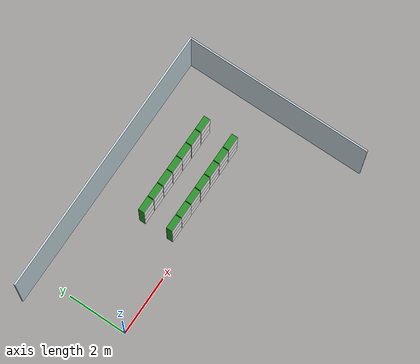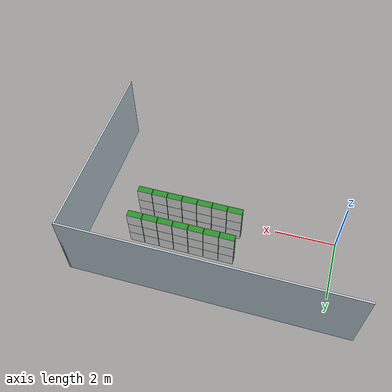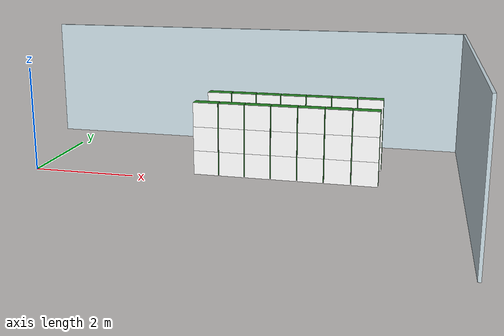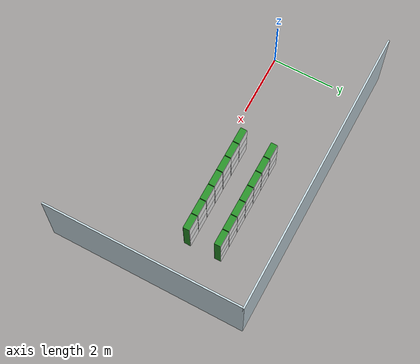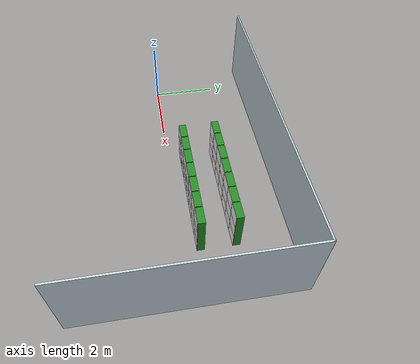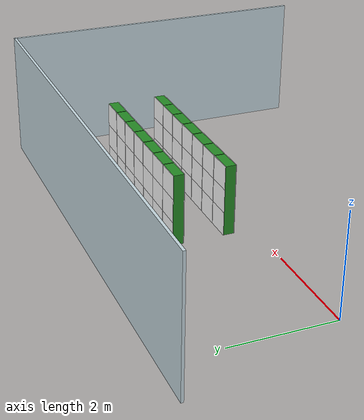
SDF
<sdf version="1.6">
 <world name="greenhouse_world">
  <model name="tomato_r2_p5">
   <static>true</static>
   <pose>3.340 0.500 0 0 0 0</pose>
   <link name="link">
    <collision name="foliage_col">
     <pose>0 0 0.700 0 0 0</pose>
     <geometry><box><size>0.480 0.200 1.400</size></box></geometry>
    </collision>
    <visual name="foliage_core">
     <pose>0 0 0.700 0 0 0</pose>
     <geometry><box><size>0.480 0.200 1.400</size></box></geometry>
     <material><ambient>0.1 0.4 0.1 1</ambient><diffuse>0.15 0.55 0.15 1</diffuse></material>
    </visual>
    <visual name="foliage_panel_py_0">
     <pose>0 0.105 0.233 0 0 0</pose>
     <geometry><box><size>0.480 0.010 0.467</size></box></geometry>
     <material>
      <diffuse>1 1 1 1</diffuse>
      <specular>0 0 0 1</specular>
      <pbr>
       <metal>
        <albedo_map>../media/materials/textures/img02.jpg</albedo_map>
        <metalness>0.0</metalness>
        <roughness>1.0</roughness>
       </metal>
      </pbr>
     </material>
    </visual>
    <visual name="foliage_panel_py_1">
     <pose>0 0.105 0.700 0 0 0</pose>
     <geometry><box><size>0.480 0.010 0.467</size></box></geometry>
     <material>
      <diffuse>1 1 1 1</diffuse>
      <specular>0 0 0 1</specular>
      <pbr>
       <metal>
        <albedo_map>../media/materials/textures/img20.jpg</albedo_map>
        <metalness>0.0</metalness>
        <roughness>1.0</roughness>
       </metal>
      </pbr>
     </material>
    </visual>
    <visual name="foliage_panel_py_2">
     <pose>0 0.105 1.167 0 0 0</pose>
     <geometry><box><size>0.480 0.010 0.467</size></box></geometry>
     <material>
      <diffuse>1 1 1 1</diffuse>
      <specular>0 0 0 1</specular>
      <pbr>
       <metal>
        <albedo_map>../media/materials/textures/img01.jpg</albedo_map>
        <metalness>0.0</metalness>
        <roughness>1.0</roughness>
       </metal>
      </pbr>
     </material>
    </visual>
    <visual name="foliage_panel_ny_0">
     <pose>0 -0.105 0.233 0 3.14159 0</pose>
     <geometry><box><size>0.480 0.010 0.467</size></box></geometry>
     <material>
      <diffuse>1 1 1 1</diffuse>
      <specular>0 0 0 1</specular>
      <pbr>
       <metal>
        <albedo_map>../media/materials/textures/img07.jpg</albedo_map>
        <metalness>0.0</metalness>
        <roughness>1.0</roughness>
       </metal>
      </pbr>
     </material>
    </visual>
    <visual name="foliage_panel_ny_1">
     <pose>0 -0.105 0.700 0 3.14159 0</pose>
     <geometry><box><size>0.480 0.010 0.467</size></box></geometry>
     <material>
      <diffuse>1 1 1 1</diffuse>
      <specular>0 0 0 1</specular>
      <pbr>
       <metal>
        <albedo_map>../media/materials/textures/img06.jpg</albedo_map>
        <metalness>0.0</metalness>
        <roughness>1.0</roughness>
       </metal>
      </pbr>
     </material>
    </visual>
    <visual name="foliage_panel_ny_2">
     <pose>0 -0.105 1.167 0 3.14159 0</pose>
     <geometry><box><size>0.480 0.010 0.467</size></box></geometry>
     <material>
      <diffuse>1 1 1 1</diffuse>
      <specular>0 0 0 1</specular>
      <pbr>
       <metal>
        <albedo_map>../media/materials/textures/img23.jpg</albedo_map>
        <metalness>0.0</metalness>
        <roughness>1.0</roughness>
       </metal>
      </pbr>
     </material>
    </visual>
   </link>
  </model>
  <model name="tomato_r2_p6">
   <static>true</static>
   <pose>3.840 0.500 0 0 0 0</pose>
   <link name="link">
    <collision name="foliage_col">
     <pose>0 0 0.700 0 0 0</pose>
     <geometry><box><size>0.480 0.200 1.400</size></box></geometry>
    </collision>
    <visual name="foliage_core">
     <pose>0 0 0.700 0 0 0</pose>
     <geometry><box><size>0.480 0.200 1.400</size></box></geometry>
     <material><ambient>0.1 0.4 0.1 1</ambient><diffuse>0.15 0.55 0.15 1</diffuse></material>
    </visual>
    <visual name="foliage_panel_py_0">
     <pose>0 0.105 0.233 0 0 0</pose>
     <geometry><box><size>0.480 0.010 0.467</size></box></geometry>
     <material>
      <diffuse>1 1 1 1</diffuse>
      <specular>0 0 0 1</specular>
      <pbr>
       <metal>
        <albedo_map>../media/materials/textures/img04.jpg</albedo_map>
        <metalness>0.0</metalness>
        <roughness>1.0</roughness>
       </metal>
      </pbr>
     </material>
    </visual>
    <visual name="foliage_panel_py_1">
     <pose>0 0.105 0.700 0 0 0</pose>
     <geometry><box><size>0.480 0.010 0.467</size></box></geometry>
     <material>
      <diffuse>1 1 1 1</diffuse>
      <specular>0 0 0 1</specular>
      <pbr>
       <metal>
        <albedo_map>../media/materials/textures/img16.jpg</albedo_map>
        <metalness>0.0</metalness>
        <roughness>1.0</roughness>
       </metal>
      </pbr>
     </material>
    </visual>
    <visual name="foliage_panel_py_2">
     <pose>0 0.105 1.167 0 0 0</pose>
     <geometry><box><size>0.480 0.010 0.467</size></box></geometry>
     <material>
      <diffuse>1 1 1 1</diffuse>
      <specular>0 0 0 1</specular>
      <pbr>
       <metal>
        <albedo_map>../media/materials/textures/img07.jpg</albedo_map>
        <metalness>0.0</metalness>
        <roughness>1.0</roughness>
       </metal>
      </pbr>
     </material>
    </visual>
    <visual name="foliage_panel_ny_0">
     <pose>0 -0.105 0.233 0 3.14159 0</pose>
     <geometry><box><size>0.480 0.010 0.467</size></box></geometry>
     <material>
      <diffuse>1 1 1 1</diffuse>
      <specular>0 0 0 1</specular>
      <pbr>
       <metal>
        <albedo_map>../media/materials/textures/img24.jpg</albedo_map>
        <metalness>0.0</metalness>
        <roughness>1.0</roughness>
       </metal>
      </pbr>
     </material>
    </visual>
    <visual name="foliage_panel_ny_1">
     <pose>0 -0.105 0.700 0 3.14159 0</pose>
     <geometry><box><size>0.480 0.010 0.467</size></box></geometry>
     <material>
      <diffuse>1 1 1 1</diffuse>
      <specular>0 0 0 1</specular>
      <pbr>
       <metal>
        <albedo_map>../media/materials/textures/img02.jpg</albedo_map>
        <metalness>0.0</metalness>
        <roughness>1.0</roughness>
       </metal>
      </pbr>
     </material>
    </visual>
    <visual name="foliage_panel_ny_2">
     <pose>0 -0.105 1.167 0 3.14159 0</pose>
     <geometry><box><size>0.480 0.010 0.467</size></box></geometry>
     <material>
      <diffuse>1 1 1 1</diffuse>
      <specular>0 0 0 1</specular>
      <pbr>
       <metal>
        <albedo_map>../media/materials/textures/img22.jpg</albedo_map>
        <metalness>0.0</metalness>
        <roughness>1.0</roughness>
       </metal>
      </pbr>
     </material>
    </visual>
   </link>
  </model>
  <model name="tomato_r2_p7">
   <static>true</static>
   <pose>4.340 0.500 0 0 0 0</pose>
   <link name="link">
    <collision name="foliage_col">
     <pose>0 0 0.700 0 0 0</pose>
     <geometry><box><size>0.480 0.200 1.400</size></box></geometry>
    </collision>
    <visual name="foliage_core">
     <pose>0 0 0.700 0 0 0</pose>
     <geometry><box><size>0.480 0.200 1.400</size></box></geometry>
     <material><ambient>0.1 0.4 0.1 1</ambient><diffuse>0.15 0.55 0.15 1</diffuse></material>
    </visual>
    <visual name="foliage_panel_py_0">
     <pose>0 0.105 0.233 0 0 0</pose>
     <geometry><box><size>0.480 0.010 0.467</size></box></geometry>
     <material>
      <diffuse>1 1 1 1</diffuse>
      <specular>0 0 0 1</specular>
      <pbr>
       <metal>
        <albedo_map>../media/materials/textures/img01.jpg</albedo_map>
        <metalness>0.0</metalness>
        <roughness>1.0</roughness>
       </metal>
      </pbr>
     </material>
    </visual>
    <visual name="foliage_panel_py_1">
     <pose>0 0.105 0.700 0 0 0</pose>
     <geometry><box><size>0.480 0.010 0.467</size></box></geometry>
     <material>
      <diffuse>1 1 1 1</diffuse>
      <specular>0 0 0 1</specular>
      <pbr>
       <metal>
        <albedo_map>../media/materials/textures/img18.jpg</albedo_map>
        <metalness>0.0</metalness>
        <roughness>1.0</roughness>
       </metal>
      </pbr>
     </material>
    </visual>
    <visual name="foliage_panel_py_2">
     <pose>0 0.105 1.167 0 0 0</pose>
     <geometry><box><size>0.480 0.010 0.467</size></box></geometry>
     <material>
      <diffuse>1 1 1 1</diffuse>
      <specular>0 0 0 1</specular>
      <pbr>
       <metal>
        <albedo_map>../media/materials/textures/img14.jpg</albedo_map>
        <metalness>0.0</metalness>
        <roughness>1.0</roughness>
       </metal>
      </pbr>
     </material>
    </visual>
    <visual name="foliage_panel_ny_0">
     <pose>0 -0.105 0.233 0 3.14159 0</pose>
     <geometry><box><size>0.480 0.010 0.467</size></box></geometry>
     <material>
      <diffuse>1 1 1 1</diffuse>
      <specular>0 0 0 1</specular>
      <pbr>
       <metal>
        <albedo_map>../media/materials/textures/img20.jpg</albedo_map>
        <metalness>0.0</metalness>
        <roughness>1.0</roughness>
       </metal>
      </pbr>
     </material>
    </visual>
    <visual name="foliage_panel_ny_1">
     <pose>0 -0.105 0.700 0 3.14159 0</pose>
     <geometry><box><size>0.480 0.010 0.467</size></box></geometry>
     <material>
      <diffuse>1 1 1 1</diffuse>
      <specular>0 0 0 1</specular>
      <pbr>
       <metal>
        <albedo_map>../media/materials/textures/img04.jpg</albedo_map>
        <metalness>0.0</metalness>
        <roughness>1.0</roughness>
       </metal>
      </pbr>
     </material>
    </visual>
    <visual name="foliage_panel_ny_2">
     <pose>0 -0.105 1.167 0 3.14159 0</pose>
     <geometry><box><size>0.480 0.010 0.467</size></box></geometry>
     <material>
      <diffuse>1 1 1 1</diffuse>
      <specular>0 0 0 1</specular>
      <pbr>
       <metal>
        <albedo_map>../media/materials/textures/img09.jpg</albedo_map>
        <metalness>0.0</metalness>
        <roughness>1.0</roughness>
       </metal>
      </pbr>
     </material>
    </visual>
   </link>
  </model>
  <model name="tomato_r2_p8">
   <static>true</static>
   <pose>4.840 0.500 0 0 0 0</pose>
   <link name="link">
    <collision name="foliage_col">
     <pose>0 0 0.700 0 0 0</pose>
     <geometry><box><size>0.480 0.200 1.400</size></box></geometry>
    </collision>
    <visual name="foliage_core">
     <pose>0 0 0.700 0 0 0</pose>
     <geometry><box><size>0.480 0.200 1.400</size></box></geometry>
     <material><ambient>0.1 0.4 0.1 1</ambient><diffuse>0.15 0.55 0.15 1</diffuse></material>
    </visual>
    <visual name="foliage_panel_py_0">
     <pose>0 0.105 0.233 0 0 0</pose>
     <geometry><box><size>0.480 0.010 0.467</size></box></geometry>
     <material>
      <diffuse>1 1 1 1</diffuse>
      <specular>0 0 0 1</specular>
      <pbr>
       <metal>
        <albedo_map>../media/materials/textures/img03.jpg</albedo_map>
        <metalness>0.0</metalness>
        <roughness>1.0</roughness>
       </metal>
      </pbr>
     </material>
    </visual>
    <visual name="foliage_panel_py_1">
     <pose>0 0.105 0.700 0 0 0</pose>
     <geometry><box><size>0.480 0.010 0.467</size></box></geometry>
     <material>
      <diffuse>1 1 1 1</diffuse>
      <specular>0 0 0 1</specular>
      <pbr>
       <metal>
        <albedo_map>../media/materials/textures/img08.jpg</albedo_map>
        <metalness>0.0</metalness>
        <roughness>1.0</roughness>
       </metal>
      </pbr>
     </material>
    </visual>
    <visual name="foliage_panel_py_2">
     <pose>0 0.105 1.167 0 0 0</pose>
     <geometry><box><size>0.480 0.010 0.467</size></box></geometry>
     <material>
      <diffuse>1 1 1 1</diffuse>
      <specular>0 0 0 1</specular>
      <pbr>
       <metal>
        <albedo_map>../media/materials/textures/img03.jpg</albedo_map>
        <metalness>0.0</metalness>
        <roughness>1.0</roughness>
       </metal>
      </pbr>
     </material>
    </visual>
    <visual name="foliage_panel_ny_0">
     <pose>0 -0.105 0.233 0 3.14159 0</pose>
     <geometry><box><size>0.480 0.010 0.467</size></box></geometry>
     <material>
      <diffuse>1 1 1 1</diffuse>
      <specular>0 0 0 1</specular>
      <pbr>
       <metal>
        <albedo_map>../media/materials/textures/img21.jpg</albedo_map>
        <metalness>0.0</metalness>
        <roughness>1.0</roughness>
       </metal>
      </pbr>
     </material>
    </visual>
    <visual name="foliage_panel_ny_1">
     <pose>0 -0.105 0.700 0 3.14159 0</pose>
     <geometry><box><size>0.480 0.010 0.467</size></box></geometry>
     <material>
      <diffuse>1 1 1 1</diffuse>
      <specular>0 0 0 1</specular>
      <pbr>
       <metal>
        <albedo_map>../media/materials/textures/img10.jpg</albedo_map>
        <metalness>0.0</metalness>
        <roughness>1.0</roughness>
       </metal>
      </pbr>
     </material>
    </visual>
    <visual name="foliage_panel_ny_2">
     <pose>0 -0.105 1.167 0 3.14159 0</pose>
     <geometry><box><size>0.480 0.010 0.467</size></box></geometry>
     <material>
      <diffuse>1 1 1 1</diffuse>
      <specular>0 0 0 1</specular>
      <pbr>
       <metal>
        <albedo_map>../media/materials/textures/img12.jpg</albedo_map>
        <metalness>0.0</metalness>
        <roughness>1.0</roughness>
       </metal>
      </pbr>
     </material>
    </visual>
   </link>
  </model>
  <model name="tomato_r2_p9">
   <static>true</static>
   <pose>5.340 0.500 0 0 0 0</pose>
   <link name="link">
    <collision name="foliage_col">
     <pose>0 0 0.700 0 0 0</pose>
     <geometry><box><size>0.480 0.200 1.400</size></box></geometry>
    </collision>
    <visual name="foliage_core">
     <pose>0 0 0.700 0 0 0</pose>
     <geometry><box><size>0.480 0.200 1.400</size></box></geometry>
     <material><ambient>0.1 0.4 0.1 1</ambient><diffuse>0.15 0.55 0.15 1</diffuse></material>
    </visual>
    <visual name="foliage_panel_py_0">
     <pose>0 0.105 0.233 0 0 0</pose>
     <geometry><box><size>0.480 0.010 0.467</size></box></geometry>
     <material>
      <diffuse>1 1 1 1</diffuse>
      <specular>0 0 0 1</specular>
      <pbr>
       <metal>
        <albedo_map>../media/materials/textures/img14.jpg</albedo_map>
        <metalness>0.0</metalness>
        <roughness>1.0</roughness>
       </metal>
      </pbr>
     </material>
    </visual>
    <visual name="foliage_panel_py_1">
     <pose>0 0.105 0.700 0 0 0</pose>
     <geometry><box><size>0.480 0.010 0.467</size></box></geometry>
     <material>
      <diffuse>1 1 1 1</diffuse>
      <specular>0 0 0 1</specular>
      <pbr>
       <metal>
        <albedo_map>../media/materials/textures/img06.jpg</albedo_map>
        <metalness>0.0</metalness>
        <roughness>1.0</roughness>
       </metal>
      </pbr>
     </material>
    </visual>
    <visual name="foliage_panel_py_2">
     <pose>0 0.105 1.167 0 0 0</pose>
     <geometry><box><size>0.480 0.010 0.467</size></box></geometry>
     <material>
      <diffuse>1 1 1 1</diffuse>
      <specular>0 0 0 1</specular>
      <pbr>
       <metal>
        <albedo_map>../media/materials/textures/img02.jpg</albedo_map>
        <metalness>0.0</metalness>
        <roughness>1.0</roughness>
       </metal>
      </pbr>
     </material>
    </visual>
    <visual name="foliage_panel_ny_0">
     <pose>0 -0.105 0.233 0 3.14159 0</pose>
     <geometry><box><size>0.480 0.010 0.467</size></box></geometry>
     <material>
      <diffuse>1 1 1 1</diffuse>
      <specular>0 0 0 1</specular>
      <pbr>
       <metal>
        <albedo_map>../media/materials/textures/img17.jpg</albedo_map>
        <metalness>0.0</metalness>
        <roughness>1.0</roughness>
       </metal>
      </pbr>
     </material>
    </visual>
    <visual name="foliage_panel_ny_1">
     <pose>0 -0.105 0.700 0 3.14159 0</pose>
     <geometry><box><size>0.480 0.010 0.467</size></box></geometry>
     <material>
      <diffuse>1 1 1 1</diffuse>
      <specular>0 0 0 1</specular>
      <pbr>
       <metal>
        <albedo_map>../media/materials/textures/img15.jpg</albedo_map>
        <metalness>0.0</metalness>
        <roughness>1.0</roughness>
       </metal>
      </pbr>
     </material>
    </visual>
    <visual name="foliage_panel_ny_2">
     <pose>0 -0.105 1.167 0 3.14159 0</pose>
     <geometry><box><size>0.480 0.010 0.467</size></box></geometry>
     <material>
      <diffuse>1 1 1 1</diffuse>
      <specular>0 0 0 1</specular>
      <pbr>
       <metal>
        <albedo_map>../media/materials/textures/img02.jpg</albedo_map>
        <metalness>0.0</metalness>
        <roughness>1.0</roughness>
       </metal>
      </pbr>
     </material>
    </visual>
   </link>
  </model>
  <model name="tomato_r2_p10">
   <static>true</static>
   <pose>5.840 0.500 0 0 0 0</pose>
   <link name="link">
    <collision name="foliage_col">
     <pose>0 0 0.700 0 0 0</pose>
     <geometry><box><size>0.480 0.200 1.400</size></box></geometry>
    </collision>
    <visual name="foliage_core">
     <pose>0 0 0.700 0 0 0</pose>
     <geometry><box><size>0.480 0.200 1.400</size></box></geometry>
     <material><ambient>0.1 0.4 0.1 1</ambient><diffuse>0.15 0.55 0.15 1</diffuse></material>
    </visual>
    <visual name="foliage_panel_py_0">
     <pose>0 0.105 0.233 0 0 0</pose>
     <geometry><box><size>0.480 0.010 0.467</size></box></geometry>
     <material>
      <diffuse>1 1 1 1</diffuse>
      <specular>0 0 0 1</specular>
      <pbr>
       <metal>
        <albedo_map>../media/materials/textures/img20.jpg</albedo_map>
        <metalness>0.0</metalness>
        <roughness>1.0</roughness>
       </metal>
      </pbr>
     </material>
    </visual>
    <visual name="foliage_panel_py_1">
     <pose>0 0.105 0.700 0 0 0</pose>
     <geometry><box><size>0.480 0.010 0.467</size></box></geometry>
     <material>
      <diffuse>1 1 1 1</diffuse>
      <specular>0 0 0 1</specular>
      <pbr>
       <metal>
        <albedo_map>../media/materials/textures/img04.jpg</albedo_map>
        <metalness>0.0</metalness>
        <roughness>1.0</roughness>
       </metal>
      </pbr>
     </material>
    </visual>
    <visual name="foliage_panel_py_2">
     <pose>0 0.105 1.167 0 0 0</pose>
     <geometry><box><size>0.480 0.010 0.467</size></box></geometry>
     <material>
      <diffuse>1 1 1 1</diffuse>
      <specular>0 0 0 1</specular>
      <pbr>
       <metal>
        <albedo_map>../media/materials/textures/img23.jpg</albedo_map>
        <metalness>0.0</metalness>
        <roughness>1.0</roughness>
       </metal>
      </pbr>
     </material>
    </visual>
    <visual name="foliage_panel_ny_0">
     <pose>0 -0.105 0.233 0 3.14159 0</pose>
     <geometry><box><size>0.480 0.010 0.467</size></box></geometry>
     <material>
      <diffuse>1 1 1 1</diffuse>
      <specular>0 0 0 1</specular>
      <pbr>
       <metal>
        <albedo_map>../media/materials/textures/img13.jpg</albedo_map>
        <metalness>0.0</metalness>
        <roughness>1.0</roughness>
       </metal>
      </pbr>
     </material>
    </visual>
    <visual name="foliage_panel_ny_1">
     <pose>0 -0.105 0.700 0 3.14159 0</pose>
     <geometry><box><size>0.480 0.010 0.467</size></box></geometry>
     <material>
      <diffuse>1 1 1 1</diffuse>
      <specular>0 0 0 1</specular>
      <pbr>
       <metal>
        <albedo_map>../media/materials/textures/img07.jpg</albedo_map>
        <metalness>0.0</metalness>
        <roughness>1.0</roughness>
       </metal>
      </pbr>
     </material>
    </visual>
    <visual name="foliage_panel_ny_2">
     <pose>0 -0.105 1.167 0 3.14159 0</pose>
     <geometry><box><size>0.480 0.010 0.467</size></box></geometry>
     <material>
      <diffuse>1 1 1 1</diffuse>
      <specular>0 0 0 1</specular>
      <pbr>
       <metal>
        <albedo_map>../media/materials/textures/img09.jpg</albedo_map>
        <metalness>0.0</metalness>
        <roughness>1.0</roughness>
       </metal>
      </pbr>
     </material>
    </visual>
   </link>
  </model>
  <model name="tomato_r2_p11">
   <static>true</static>
   <pose>6.340 0.500 0 0 0 0</pose>
   <link name="link">
    <collision name="foliage_col">
     <pose>0 0 0.700 0 0 0</pose>
     <geometry><box><size>0.480 0.200 1.400</size></box></geometry>
    </collision>
    <visual name="foliage_core">
     <pose>0 0 0.700 0 0 0</pose>
     <geometry><box><size>0.480 0.200 1.400</size></box></geometry>
     <material><ambient>0.1 0.4 0.1 1</ambient><diffuse>0.15 0.55 0.15 1</diffuse></material>
    </visual>
    <visual name="foliage_panel_py_0">
     <pose>0 0.105 0.233 0 0 0</pose>
     <geometry><box><size>0.480 0.010 0.467</size></box></geometry>
     <material>
      <diffuse>1 1 1 1</diffuse>
      <specular>0 0 0 1</specular>
      <pbr>
       <metal>
        <albedo_map>../media/materials/textures/img12.jpg</albedo_map>
        <metalness>0.0</metalness>
        <roughness>1.0</roughness>
       </metal>
      </pbr>
     </material>
    </visual>
    <visual name="foliage_panel_py_1">
     <pose>0 0.105 0.700 0 0 0</pose>
     <geometry><box><size>0.480 0.010 0.467</size></box></geometry>
     <material>
      <diffuse>1 1 1 1</diffuse>
      <specular>0 0 0 1</specular>
      <pbr>
       <metal>
        <albedo_map>../media/materials/textures/img24.jpg</albedo_map>
        <metalness>0.0</metalness>
        <roughness>1.0</roughness>
       </metal>
      </pbr>
     </material>
    </visual>
    <visual name="foliage_panel_py_2">
     <pose>0 0.105 1.167 0 0 0</pose>
     <geometry><box><size>0.480 0.010 0.467</size></box></geometry>
     <material>
      <diffuse>1 1 1 1</diffuse>
      <specular>0 0 0 1</specular>
      <pbr>
       <metal>
        <albedo_map>../media/materials/textures/img16.jpg</albedo_map>
        <metalness>0.0</metalness>
        <roughness>1.0</roughness>
       </metal>
      </pbr>
     </material>
    </visual>
    <visual name="foliage_panel_ny_0">
     <pose>0 -0.105 0.233 0 3.14159 0</pose>
     <geometry><box><size>0.480 0.010 0.467</size></box></geometry>
     <material>
      <diffuse>1 1 1 1</diffuse>
      <specular>0 0 0 1</specular>
      <pbr>
       <metal>
        <albedo_map>../media/materials/textures/img19.jpg</albedo_map>
        <metalness>0.0</metalness>
        <roughness>1.0</roughness>
       </metal>
      </pbr>
     </material>
    </visual>
    <visual name="foliage_panel_ny_1">
     <pose>0 -0.105 0.700 0 3.14159 0</pose>
     <geometry><box><size>0.480 0.010 0.467</size></box></geometry>
     <material>
      <diffuse>1 1 1 1</diffuse>
      <specular>0 0 0 1</specular>
      <pbr>
       <metal>
        <albedo_map>../media/materials/textures/img06.jpg</albedo_map>
        <metalness>0.0</metalness>
        <roughness>1.0</roughness>
       </metal>
      </pbr>
     </material>
    </visual>
    <visual name="foliage_panel_ny_2">
     <pose>0 -0.105 1.167 0 3.14159 0</pose>
     <geometry><box><size>0.480 0.010 0.467</size></box></geometry>
     <material>
      <diffuse>1 1 1 1</diffuse>
      <specular>0 0 0 1</specular>
      <pbr>
       <metal>
        <albedo_map>../media/materials/textures/img23.jpg</albedo_map>
        <metalness>0.0</metalness>
        <roughness>1.0</roughness>
       </metal>
      </pbr>
     </material>
    </visual>
   </link>
  </model>
  <model name="tomato_r3_p5">
   <static>true</static>
   <pose>3.340 1.500 0 0 0 0</pose>
   <link name="link">
    <collision name="foliage_col">
     <pose>0 0 0.700 0 0 0</pose>
     <geometry><box><size>0.480 0.200 1.400</size></box></geometry>
    </collision>
    <visual name="foliage_core">
     <pose>0 0 0.700 0 0 0</pose>
     <geometry><box><size>0.480 0.200 1.400</size></box></geometry>
     <material><ambient>0.1 0.4 0.1 1</ambient><diffuse>0.15 0.55 0.15 1</diffuse></material>
    </visual>
    <visual name="foliage_panel_py_0">
     <pose>0 0.105 0.233 0 0 0</pose>
     <geometry><box><size>0.480 0.010 0.467</size></box></geometry>
     <material>
      <diffuse>1 1 1 1</diffuse>
      <specular>0 0 0 1</specular>
      <pbr>
       <metal>
        <albedo_map>../media/materials/textures/img15.jpg</albedo_map>
        <metalness>0.0</metalness>
        <roughness>1.0</roughness>
       </metal>
      </pbr>
     </material>
    </visual>
    <visual name="foliage_panel_py_1">
     <pose>0 0.105 0.700 0 0 0</pose>
     <geometry><box><size>0.480 0.010 0.467</size></box></geometry>
     <material>
      <diffuse>1 1 1 1</diffuse>
      <specular>0 0 0 1</specular>
      <pbr>
       <metal>
        <albedo_map>../media/materials/textures/img24.jpg</albedo_map>
        <metalness>0.0</metalness>
        <roughness>1.0</roughness>
       </metal>
      </pbr>
     </material>
    </visual>
    <visual name="foliage_panel_py_2">
     <pose>0 0.105 1.167 0 0 0</pose>
     <geometry><box><size>0.480 0.010 0.467</size></box></geometry>
     <material>
      <diffuse>1 1 1 1</diffuse>
      <specular>0 0 0 1</specular>
      <pbr>
       <metal>
        <albedo_map>../media/materials/textures/img03.jpg</albedo_map>
        <metalness>0.0</metalness>
        <roughness>1.0</roughness>
       </metal>
      </pbr>
     </material>
    </visual>
    <visual name="foliage_panel_ny_0">
     <pose>0 -0.105 0.233 0 3.14159 0</pose>
     <geometry><box><size>0.480 0.010 0.467</size></box></geometry>
     <material>
      <diffuse>1 1 1 1</diffuse>
      <specular>0 0 0 1</specular>
      <pbr>
       <metal>
        <albedo_map>../media/materials/textures/img11.jpg</albedo_map>
        <metalness>0.0</metalness>
        <roughness>1.0</roughness>
       </metal>
      </pbr>
     </material>
    </visual>
    <visual name="foliage_panel_ny_1">
     <pose>0 -0.105 0.700 0 3.14159 0</pose>
     <geometry><box><size>0.480 0.010 0.467</size></box></geometry>
     <material>
      <diffuse>1 1 1 1</diffuse>
      <specular>0 0 0 1</specular>
      <pbr>
       <metal>
        <albedo_map>../media/materials/textures/img24.jpg</albedo_map>
        <metalness>0.0</metalness>
        <roughness>1.0</roughness>
       </metal>
      </pbr>
     </material>
    </visual>
    <visual name="foliage_panel_ny_2">
     <pose>0 -0.105 1.167 0 3.14159 0</pose>
     <geometry><box><size>0.480 0.010 0.467</size></box></geometry>
     <material>
      <diffuse>1 1 1 1</diffuse>
      <specular>0 0 0 1</specular>
      <pbr>
       <metal>
        <albedo_map>../media/materials/textures/img02.jpg</albedo_map>
        <metalness>0.0</metalness>
        <roughness>1.0</roughness>
       </metal>
      </pbr>
     </material>
    </visual>
   </link>
  </model>
  <model name="tomato_r3_p6">
   <static>true</static>
   <pose>3.840 1.500 0 0 0 0</pose>
   <link name="link">
    <collision name="foliage_col">
     <pose>0 0 0.700 0 0 0</pose>
     <geometry><box><size>0.480 0.200 1.400</size></box></geometry>
    </collision>
    <visual name="foliage_core">
     <pose>0 0 0.700 0 0 0</pose>
     <geometry><box><size>0.480 0.200 1.400</size></box></geometry>
     <material><ambient>0.1 0.4 0.1 1</ambient><diffuse>0.15 0.55 0.15 1</diffuse></material>
    </visual>
    <visual name="foliage_panel_py_0">
     <pose>0 0.105 0.233 0 0 0</pose>
     <geometry><box><size>0.480 0.010 0.467</size></box></geometry>
     <material>
      <diffuse>1 1 1 1</diffuse>
      <specular>0 0 0 1</specular>
      <pbr>
       <metal>
        <albedo_map>../media/materials/textures/img18.jpg</albedo_map>
        <metalness>0.0</metalness>
        <roughness>1.0</roughness>
       </metal>
      </pbr>
     </material>
    </visual>
    <visual name="foliage_panel_py_1">
     <pose>0 0.105 0.700 0 0 0</pose>
     <geometry><box><size>0.480 0.010 0.467</size></box></geometry>
     <material>
      <diffuse>1 1 1 1</diffuse>
      <specular>0 0 0 1</specular>
      <pbr>
       <metal>
        <albedo_map>../media/materials/textures/img09.jpg</albedo_map>
        <metalness>0.0</metalness>
        <roughness>1.0</roughness>
       </metal>
      </pbr>
     </material>
    </visual>
    <visual name="foliage_panel_py_2">
     <pose>0 0.105 1.167 0 0 0</pose>
     <geometry><box><size>0.480 0.010 0.467</size></box></geometry>
     <material>
      <diffuse>1 1 1 1</diffuse>
      <specular>0 0 0 1</specular>
      <pbr>
       <metal>
        <albedo_map>../media/materials/textures/img05.jpg</albedo_map>
        <metalness>0.0</metalness>
        <roughness>1.0</roughness>
       </metal>
      </pbr>
     </material>
    </visual>
    <visual name="foliage_panel_ny_0">
     <pose>0 -0.105 0.233 0 3.14159 0</pose>
     <geometry><box><size>0.480 0.010 0.467</size></box></geometry>
     <material>
      <diffuse>1 1 1 1</diffuse>
      <specular>0 0 0 1</specular>
      <pbr>
       <metal>
        <albedo_map>../media/materials/textures/img08.jpg</albedo_map>
        <metalness>0.0</metalness>
        <roughness>1.0</roughness>
       </metal>
      </pbr>
     </material>
    </visual>
    <visual name="foliage_panel_ny_1">
     <pose>0 -0.105 0.700 0 3.14159 0</pose>
     <geometry><box><size>0.480 0.010 0.467</size></box></geometry>
     <material>
      <diffuse>1 1 1 1</diffuse>
      <specular>0 0 0 1</specular>
      <pbr>
       <metal>
        <albedo_map>../media/materials/textures/img16.jpg</albedo_map>
        <metalness>0.0</metalness>
        <roughness>1.0</roughness>
       </metal>
      </pbr>
     </material>
    </visual>
    <visual name="foliage_panel_ny_2">
     <pose>0 -0.105 1.167 0 3.14159 0</pose>
     <geometry><box><size>0.480 0.010 0.467</size></box></geometry>
     <material>
      <diffuse>1 1 1 1</diffuse>
      <specular>0 0 0 1</specular>
      <pbr>
       <metal>
        <albedo_map>../media/materials/textures/img12.jpg</albedo_map>
        <metalness>0.0</metalness>
        <roughness>1.0</roughness>
       </metal>
      </pbr>
     </material>
    </visual>
   </link>
  </model>
  <model name="tomato_r3_p7">
   <static>true</static>
   <pose>4.340 1.500 0 0 0 0</pose>
   <link name="link">
    <collision name="foliage_col">
     <pose>0 0 0.700 0 0 0</pose>
     <geometry><box><size>0.480 0.200 1.400</size></box></geometry>
    </collision>
    <visual name="foliage_core">
     <pose>0 0 0.700 0 0 0</pose>
     <geometry><box><size>0.480 0.200 1.400</size></box></geometry>
     <material><ambient>0.1 0.4 0.1 1</ambient><diffuse>0.15 0.55 0.15 1</diffuse></material>
    </visual>
    <visual name="foliage_panel_py_0">
     <pose>0 0.105 0.233 0 0 0</pose>
     <geometry><box><size>0.480 0.010 0.467</size></box></geometry>
     <material>
      <diffuse>1 1 1 1</diffuse>
      <specular>0 0 0 1</specular>
      <pbr>
       <metal>
        <albedo_map>../media/materials/textures/img20.jpg</albedo_map>
        <metalness>0.0</metalness>
        <roughness>1.0</roughness>
       </metal>
      </pbr>
     </material>
    </visual>
    <visual name="foliage_panel_py_1">
     <pose>0 0.105 0.700 0 0 0</pose>
     <geometry><box><size>0.480 0.010 0.467</size></box></geometry>
     <material>
      <diffuse>1 1 1 1</diffuse>
      <specular>0 0 0 1</specular>
      <pbr>
       <metal>
        <albedo_map>../media/materials/textures/img10.jpg</albedo_map>
        <metalness>0.0</metalness>
        <roughness>1.0</roughness>
       </metal>
      </pbr>
     </material>
    </visual>
    <visual name="foliage_panel_py_2">
     <pose>0 0.105 1.167 0 0 0</pose>
     <geometry><box><size>0.480 0.010 0.467</size></box></geometry>
     <material>
      <diffuse>1 1 1 1</diffuse>
      <specular>0 0 0 1</specular>
      <pbr>
       <metal>
        <albedo_map>../media/materials/textures/img22.jpg</albedo_map>
        <metalness>0.0</metalness>
        <roughness>1.0</roughness>
       </metal>
      </pbr>
     </material>
    </visual>
    <visual name="foliage_panel_ny_0">
     <pose>0 -0.105 0.233 0 3.14159 0</pose>
     <geometry><box><size>0.480 0.010 0.467</size></box></geometry>
     <material>
      <diffuse>1 1 1 1</diffuse>
      <specular>0 0 0 1</specular>
      <pbr>
       <metal>
        <albedo_map>../media/materials/textures/img12.jpg</albedo_map>
        <metalness>0.0</metalness>
        <roughness>1.0</roughness>
       </metal>
      </pbr>
     </material>
    </visual>
    <visual name="foliage_panel_ny_1">
     <pose>0 -0.105 0.700 0 3.14159 0</pose>
     <geometry><box><size>0.480 0.010 0.467</size></box></geometry>
     <material>
      <diffuse>1 1 1 1</diffuse>
      <specular>0 0 0 1</specular>
      <pbr>
       <metal>
        <albedo_map>../media/materials/textures/img19.jpg</albedo_map>
        <metalness>0.0</metalness>
        <roughness>1.0</roughness>
       </metal>
      </pbr>
     </material>
    </visual>
    <visual name="foliage_panel_ny_2">
     <pose>0 -0.105 1.167 0 3.14159 0</pose>
     <geometry><box><size>0.480 0.010 0.467</size></box></geometry>
     <material>
      <diffuse>1 1 1 1</diffuse>
      <specular>0 0 0 1</specular>
      <pbr>
       <metal>
        <albedo_map>../media/materials/textures/img21.jpg</albedo_map>
        <metalness>0.0</metalness>
        <roughness>1.0</roughness>
       </metal>
      </pbr>
     </material>
    </visual>
   </link>
  </model>
  <model name="tomato_r3_p8">
   <static>true</static>
   <pose>4.840 1.500 0 0 0 0</pose>
   <link name="link">
    <collision name="foliage_col">
     <pose>0 0 0.700 0 0 0</pose>
     <geometry><box><size>0.480 0.200 1.400</size></box></geometry>
    </collision>
    <visual name="foliage_core">
     <pose>0 0 0.700 0 0 0</pose>
     <geometry><box><size>0.480 0.200 1.400</size></box></geometry>
     <material><ambient>0.1 0.4 0.1 1</ambient><diffuse>0.15 0.55 0.15 1</diffuse></material>
    </visual>
    <visual name="foliage_panel_py_0">
     <pose>0 0.105 0.233 0 0 0</pose>
     <geometry><box><size>0.480 0.010 0.467</size></box></geometry>
     <material>
      <diffuse>1 1 1 1</diffuse>
      <specular>0 0 0 1</specular>
      <pbr>
       <metal>
        <albedo_map>../media/materials/textures/img20.jpg</albedo_map>
        <metalness>0.0</metalness>
        <roughness>1.0</roughness>
       </metal>
      </pbr>
     </material>
    </visual>
    <visual name="foliage_panel_py_1">
     <pose>0 0.105 0.700 0 0 0</pose>
     <geometry><box><size>0.480 0.010 0.467</size></box></geometry>
     <material>
      <diffuse>1 1 1 1</diffuse>
      <specular>0 0 0 1</specular>
      <pbr>
       <metal>
        <albedo_map>../media/materials/textures/img05.jpg</albedo_map>
        <metalness>0.0</metalness>
        <roughness>1.0</roughness>
       </metal>
      </pbr>
     </material>
    </visual>
    <visual name="foliage_panel_py_2">
     <pose>0 0.105 1.167 0 0 0</pose>
     <geometry><box><size>0.480 0.010 0.467</size></box></geometry>
     <material>
      <diffuse>1 1 1 1</diffuse>
      <specular>0 0 0 1</specular>
      <pbr>
       <metal>
        <albedo_map>../media/materials/textures/img23.jpg</albedo_map>
        <metalness>0.0</metalness>
        <roughness>1.0</roughness>
       </metal>
      </pbr>
     </material>
    </visual>
    <visual name="foliage_panel_ny_0">
     <pose>0 -0.105 0.233 0 3.14159 0</pose>
     <geometry><box><size>0.480 0.010 0.467</size></box></geometry>
     <material>
      <diffuse>1 1 1 1</diffuse>
      <specular>0 0 0 1</specular>
      <pbr>
       <metal>
        <albedo_map>../media/materials/textures/img10.jpg</albedo_map>
        <metalness>0.0</metalness>
        <roughness>1.0</roughness>
       </metal>
      </pbr>
     </material>
    </visual>
    <visual name="foliage_panel_ny_1">
     <pose>0 -0.105 0.700 0 3.14159 0</pose>
     <geometry><box><size>0.480 0.010 0.467</size></box></geometry>
     <material>
      <diffuse>1 1 1 1</diffuse>
      <specular>0 0 0 1</specular>
      <pbr>
       <metal>
        <albedo_map>../media/materials/textures/img13.jpg</albedo_map>
        <metalness>0.0</metalness>
        <roughness>1.0</roughness>
       </metal>
      </pbr>
     </material>
    </visual>
    <visual name="foliage_panel_ny_2">
     <pose>0 -0.105 1.167 0 3.14159 0</pose>
     <geometry><box><size>0.480 0.010 0.467</size></box></geometry>
     <material>
      <diffuse>1 1 1 1</diffuse>
      <specular>0 0 0 1</specular>
      <pbr>
       <metal>
        <albedo_map>../media/materials/textures/img24.jpg</albedo_map>
        <metalness>0.0</metalness>
        <roughness>1.0</roughness>
       </metal>
      </pbr>
     </material>
    </visual>
   </link>
  </model>
  <model name="tomato_r3_p9">
   <static>true</static>
   <pose>5.340 1.500 0 0 0 0</pose>
   <link name="link">
    <collision name="foliage_col">
     <pose>0 0 0.700 0 0 0</pose>
     <geometry><box><size>0.480 0.200 1.400</size></box></geometry>
    </collision>
    <visual name="foliage_core">
     <pose>0 0 0.700 0 0 0</pose>
     <geometry><box><size>0.480 0.200 1.400</size></box></geometry>
     <material><ambient>0.1 0.4 0.1 1</ambient><diffuse>0.15 0.55 0.15 1</diffuse></material>
    </visual>
    <visual name="foliage_panel_py_0">
     <pose>0 0.105 0.233 0 0 0</pose>
     <geometry><box><size>0.480 0.010 0.467</size></box></geometry>
     <material>
      <diffuse>1 1 1 1</diffuse>
      <specular>0 0 0 1</specular>
      <pbr>
       <metal>
        <albedo_map>../media/materials/textures/img14.jpg</albedo_map>
        <metalness>0.0</metalness>
        <roughness>1.0</roughness>
       </metal>
      </pbr>
     </material>
    </visual>
    <visual name="foliage_panel_py_1">
     <pose>0 0.105 0.700 0 0 0</pose>
     <geometry><box><size>0.480 0.010 0.467</size></box></geometry>
     <material>
      <diffuse>1 1 1 1</diffuse>
      <specular>0 0 0 1</specular>
      <pbr>
       <metal>
        <albedo_map>../media/materials/textures/img21.jpg</albedo_map>
        <metalness>0.0</metalness>
        <roughness>1.0</roughness>
       </metal>
      </pbr>
     </material>
    </visual>
    <visual name="foliage_panel_py_2">
     <pose>0 0.105 1.167 0 0 0</pose>
     <geometry><box><size>0.480 0.010 0.467</size></box></geometry>
     <material>
      <diffuse>1 1 1 1</diffuse>
      <specular>0 0 0 1</specular>
      <pbr>
       <metal>
        <albedo_map>../media/materials/textures/img03.jpg</albedo_map>
        <metalness>0.0</metalness>
        <roughness>1.0</roughness>
       </metal>
      </pbr>
     </material>
    </visual>
    <visual name="foliage_panel_ny_0">
     <pose>0 -0.105 0.233 0 3.14159 0</pose>
     <geometry><box><size>0.480 0.010 0.467</size></box></geometry>
     <material>
      <diffuse>1 1 1 1</diffuse>
      <specular>0 0 0 1</specular>
      <pbr>
       <metal>
        <albedo_map>../media/materials/textures/img01.jpg</albedo_map>
        <metalness>0.0</metalness>
        <roughness>1.0</roughness>
       </metal>
      </pbr>
     </material>
    </visual>
    <visual name="foliage_panel_ny_1">
     <pose>0 -0.105 0.700 0 3.14159 0</pose>
     <geometry><box><size>0.480 0.010 0.467</size></box></geometry>
     <material>
      <diffuse>1 1 1 1</diffuse>
      <specular>0 0 0 1</specular>
      <pbr>
       <metal>
        <albedo_map>../media/materials/textures/img20.jpg</albedo_map>
        <metalness>0.0</metalness>
        <roughness>1.0</roughness>
       </metal>
      </pbr>
     </material>
    </visual>
    <visual name="foliage_panel_ny_2">
     <pose>0 -0.105 1.167 0 3.14159 0</pose>
     <geometry><box><size>0.480 0.010 0.467</size></box></geometry>
     <material>
      <diffuse>1 1 1 1</diffuse>
      <specular>0 0 0 1</specular>
      <pbr>
       <metal>
        <albedo_map>../media/materials/textures/img07.jpg</albedo_map>
        <metalness>0.0</metalness>
        <roughness>1.0</roughness>
       </metal>
      </pbr>
     </material>
    </visual>
   </link>
  </model>
  <model name="tomato_r3_p10">
   <static>true</static>
   <pose>5.840 1.500 0 0 0 0</pose>
   <link name="link">
    <collision name="foliage_col">
     <pose>0 0 0.700 0 0 0</pose>
     <geometry><box><size>0.480 0.200 1.400</size></box></geometry>
    </collision>
    <visual name="foliage_core">
     <pose>0 0 0.700 0 0 0</pose>
     <geometry><box><size>0.480 0.200 1.400</size></box></geometry>
     <material><ambient>0.1 0.4 0.1 1</ambient><diffuse>0.15 0.55 0.15 1</diffuse></material>
    </visual>
    <visual name="foliage_panel_py_0">
     <pose>0 0.105 0.233 0 0 0</pose>
     <geometry><box><size>0.480 0.010 0.467</size></box></geometry>
     <material>
      <diffuse>1 1 1 1</diffuse>
      <specular>0 0 0 1</specular>
      <pbr>
       <metal>
        <albedo_map>../media/materials/textures/img23.jpg</albedo_map>
        <metalness>0.0</metalness>
        <roughness>1.0</roughness>
       </metal>
      </pbr>
     </material>
    </visual>
    <visual name="foliage_panel_py_1">
     <pose>0 0.105 0.700 0 0 0</pose>
     <geometry><box><size>0.480 0.010 0.467</size></box></geometry>
     <material>
      <diffuse>1 1 1 1</diffuse>
      <specular>0 0 0 1</specular>
      <pbr>
       <metal>
        <albedo_map>../media/materials/textures/img11.jpg</albedo_map>
        <metalness>0.0</metalness>
        <roughness>1.0</roughness>
       </metal>
      </pbr>
     </material>
    </visual>
    <visual name="foliage_panel_py_2">
     <pose>0 0.105 1.167 0 0 0</pose>
     <geometry><box><size>0.480 0.010 0.467</size></box></geometry>
     <material>
      <diffuse>1 1 1 1</diffuse>
      <specular>0 0 0 1</specular>
      <pbr>
       <metal>
        <albedo_map>../media/materials/textures/img06.jpg</albedo_map>
        <metalness>0.0</metalness>
        <roughness>1.0</roughness>
       </metal>
      </pbr>
     </material>
    </visual>
    <visual name="foliage_panel_ny_0">
     <pose>0 -0.105 0.233 0 3.14159 0</pose>
     <geometry><box><size>0.480 0.010 0.467</size></box></geometry>
     <material>
      <diffuse>1 1 1 1</diffuse>
      <specular>0 0 0 1</specular>
      <pbr>
       <metal>
        <albedo_map>../media/materials/textures/img08.jpg</albedo_map>
        <metalness>0.0</metalness>
        <roughness>1.0</roughness>
       </metal>
      </pbr>
     </material>
    </visual>
    <visual name="foliage_panel_ny_1">
     <pose>0 -0.105 0.700 0 3.14159 0</pose>
     <geometry><box><size>0.480 0.010 0.467</size></box></geometry>
     <material>
      <diffuse>1 1 1 1</diffuse>
      <specular>0 0 0 1</specular>
      <pbr>
       <metal>
        <albedo_map>../media/materials/textures/img08.jpg</albedo_map>
        <metalness>0.0</metalness>
        <roughness>1.0</roughness>
       </metal>
      </pbr>
     </material>
    </visual>
    <visual name="foliage_panel_ny_2">
     <pose>0 -0.105 1.167 0 3.14159 0</pose>
     <geometry><box><size>0.480 0.010 0.467</size></box></geometry>
     <material>
      <diffuse>1 1 1 1</diffuse>
      <specular>0 0 0 1</specular>
      <pbr>
       <metal>
        <albedo_map>../media/materials/textures/img21.jpg</albedo_map>
        <metalness>0.0</metalness>
        <roughness>1.0</roughness>
       </metal>
      </pbr>
     </material>
    </visual>
   </link>
  </model>
  <model name="tomato_r3_p11">
   <static>true</static>
   <pose>6.340 1.500 0 0 0 0</pose>
   <link name="link">
    <collision name="foliage_col">
     <pose>0 0 0.700 0 0 0</pose>
     <geometry><box><size>0.480 0.200 1.400</size></box></geometry>
    </collision>
    <visual name="foliage_core">
     <pose>0 0 0.700 0 0 0</pose>
     <geometry><box><size>0.480 0.200 1.400</size></box></geometry>
     <material><ambient>0.1 0.4 0.1 1</ambient><diffuse>0.15 0.55 0.15 1</diffuse></material>
    </visual>
    <visual name="foliage_panel_py_0">
     <pose>0 0.105 0.233 0 0 0</pose>
     <geometry><box><size>0.480 0.010 0.467</size></box></geometry>
     <material>
      <diffuse>1 1 1 1</diffuse>
      <specular>0 0 0 1</specular>
      <pbr>
       <metal>
        <albedo_map>../media/materials/textures/img15.jpg</albedo_map>
        <metalness>0.0</metalness>
        <roughness>1.0</roughness>
       </metal>
      </pbr>
     </material>
    </visual>
    <visual name="foliage_panel_py_1">
     <pose>0 0.105 0.700 0 0 0</pose>
     <geometry><box><size>0.480 0.010 0.467</size></box></geometry>
     <material>
      <diffuse>1 1 1 1</diffuse>
      <specular>0 0 0 1</specular>
      <pbr>
       <metal>
        <albedo_map>../media/materials/textures/img13.jpg</albedo_map>
        <metalness>0.0</metalness>
        <roughness>1.0</roughness>
       </metal>
      </pbr>
     </material>
    </visual>
    <visual name="foliage_panel_py_2">
     <pose>0 0.105 1.167 0 0 0</pose>
     <geometry><box><size>0.480 0.010 0.467</size></box></geometry>
     <material>
      <diffuse>1 1 1 1</diffuse>
      <specular>0 0 0 1</specular>
      <pbr>
       <metal>
        <albedo_map>../media/materials/textures/img23.jpg</albedo_map>
        <metalness>0.0</metalness>
        <roughness>1.0</roughness>
       </metal>
      </pbr>
     </material>
    </visual>
    <visual name="foliage_panel_ny_0">
     <pose>0 -0.105 0.233 0 3.14159 0</pose>
     <geometry><box><size>0.480 0.010 0.467</size></box></geometry>
     <material>
      <diffuse>1 1 1 1</diffuse>
      <specular>0 0 0 1</specular>
      <pbr>
       <metal>
        <albedo_map>../media/materials/textures/img22.jpg</albedo_map>
        <metalness>0.0</metalness>
        <roughness>1.0</roughness>
       </metal>
      </pbr>
     </material>
    </visual>
    <visual name="foliage_panel_ny_1">
     <pose>0 -0.105 0.700 0 3.14159 0</pose>
     <geometry><box><size>0.480 0.010 0.467</size></box></geometry>
     <material>
      <diffuse>1 1 1 1</diffuse>
      <specular>0 0 0 1</specular>
      <pbr>
       <metal>
        <albedo_map>../media/materials/textures/img19.jpg</albedo_map>
        <metalness>0.0</metalness>
        <roughness>1.0</roughness>
       </metal>
      </pbr>
     </material>
    </visual>
    <visual name="foliage_panel_ny_2">
     <pose>0 -0.105 1.167 0 3.14159 0</pose>
     <geometry><box><size>0.480 0.010 0.467</size></box></geometry>
     <material>
      <diffuse>1 1 1 1</diffuse>
      <specular>0 0 0 1</specular>
      <pbr>
       <metal>
        <albedo_map>../media/materials/textures/img14.jpg</albedo_map>
        <metalness>0.0</metalness>
        <roughness>1.0</roughness>
       </metal>
      </pbr>
     </material>
    </visual>
   </link>
  </model>
  <model name="wall_north">
   <static>true</static>
   <pose>3.590 3.100 1.250 0 0 0</pose>
   <link name="link">
    <collision name="c"><geometry><box><size>9.030 0.050 2.5</size></box></geometry></collision>
    <visual name="v">
     <geometry><box><size>9.030 0.050 2.5</size></box></geometry>
     <material>
      <ambient>0.55 0.62 0.65 1</ambient>
      <diffuse>0.78 0.85 0.88 1</diffuse>
      <specular>0.9 0.9 0.9 1</specular>
     </material>
    </visual>
   </link>
  </model>
  <model name="wall_east">
   <static>true</static>
   <pose>8.080 0.000 1.250 0 0 0</pose>
   <link name="link">
    <collision name="c"><geometry><box><size>0.050 6.250 2.5</size></box></geometry></collision>
    <visual name="v">
     <geometry><box><size>0.050 6.250 2.5</size></box></geometry>
     <material>
      <ambient>0.55 0.62 0.65 1</ambient>
      <diffuse>0.78 0.85 0.88 1</diffuse>
      <specular>0.9 0.9 0.9 1</specular>
     </material>
    </visual>
   </link>
  </model>
 </world>
</sdf>
